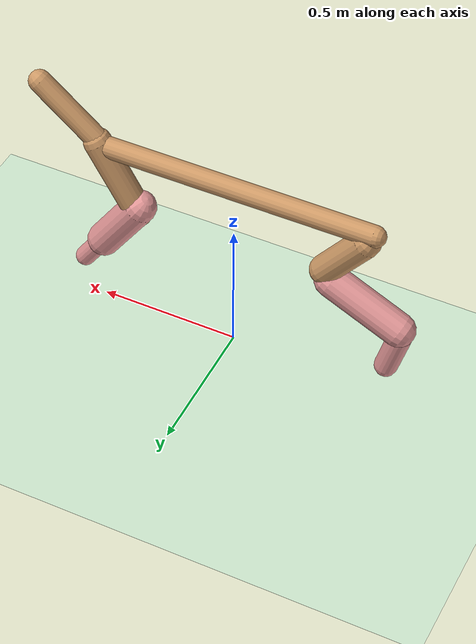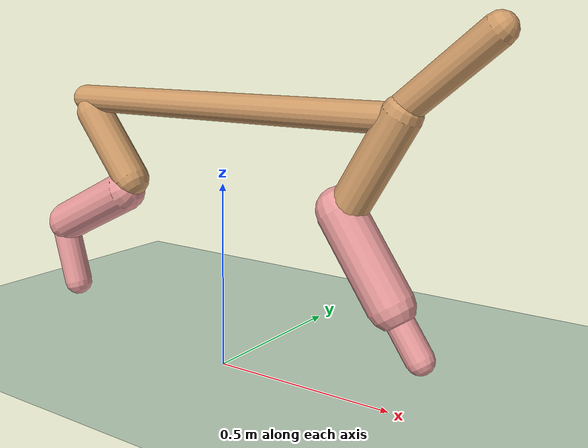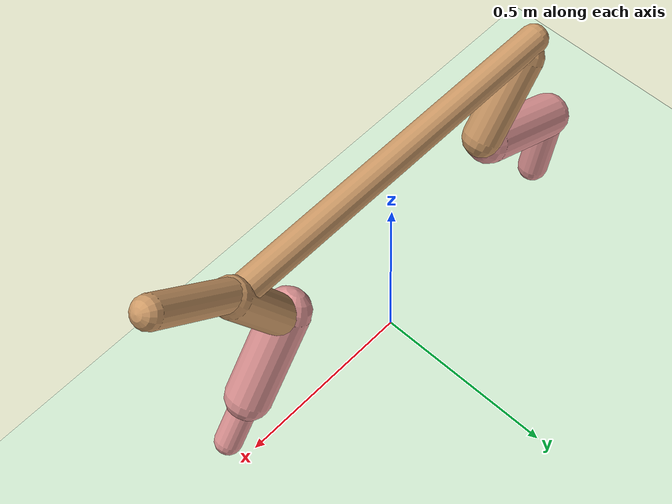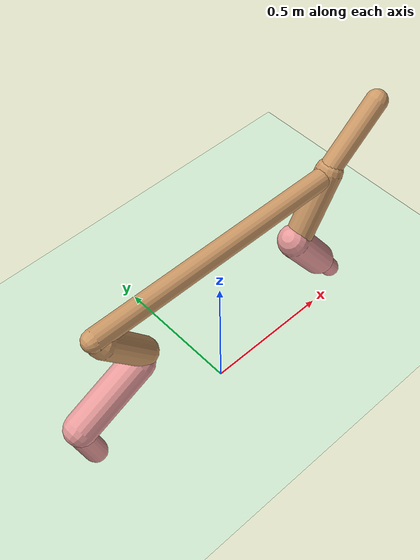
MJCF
<?xml version="1.0" encoding="utf-8"?>
<mujoco model="cheetah">
	<compiler angle="radian" coordinate="local" inertiafromgeom="true" settotalmass="14"></compiler>
	<default>
		<joint armature=".1" damping="0.011441536121211878" limited="true" solimplimit="0 .8 .03" solreflimit=".02 1" stiffness="6.93709244367715"></joint>
		<geom conaffinity="0" condim="3" contype="1" friction="0.46080040900465663 0.08325255886392405 0.08004066173115099" rgba="0.8 0.6 .4 1" solimp="0.0 0.8 0.01" solref="0.02 1"></geom>
		<motor ctrllimited="true" ctrlrange="-1 1"></motor>
	</default>
	<size nstack="300000" nuser_geom="1"></size>
	<option gravity="0 0 -9.81" timestep="0.01"></option>
	<asset>
		<texture builtin="gradient" height="100" rgb1="1 1 1" rgb2="0 0 0" type="skybox" width="100"></texture>
		<texture builtin="flat" height="1278" mark="cross" markrgb="1 1 1" name="texgeom" random="0.01" rgb1="0.8 0.6 0.4" rgb2="0.8 0.6 0.4" type="cube" width="127"></texture>
		<texture builtin="checker" height="100" name="texplane" rgb1="0 0 0" rgb2="0.8 0.8 0.8" type="2d" width="100"></texture>
		<material name="MatPlane" reflectance="0.5" shininess="1" specular="1" texrepeat="60 60" texture="texplane"></material>
		<material name="geom" texture="texgeom" texuniform="true"></material>
	</asset>
	<worldbody>
		<light cutoff="100" diffuse="1 1 1" dir="-0 0 -1.3" directional="true" exponent="1" pos="0 0 1.3" specular=".1 .1 .1"></light>
		<geom conaffinity="1" condim="3" material="MatPlane" name="floor" pos="0 0 0" rgba="0.8 0.9 0.8 1" size="38.310828450698594 48.646450147743785 46.50390545911875" type="plane"></geom>
		<body name="torso" pos="0 0 .7">
			<camera name="track" mode="trackcom" pos="0 -3 0.3" xyaxes="1 0 0 0 0 1"></camera>
			<joint armature="0" axis="1 0 0" damping="0.0" limited="false" name="rootx" pos="0 0 0" stiffness="0.0" type="slide"></joint>
			<joint armature="0" axis="0 0 1" damping="0.0" limited="false" name="rootz" pos="0 0 0" stiffness="0.0" type="slide"></joint>
			<joint armature="0" axis="0 1 0" damping="0.0" limited="false" name="rooty" pos="0 0 0" stiffness="0.0" type="hinge"></joint>
			<geom fromto="-.5 0 0 .5 0 0" name="torso" size="0.037619391989680014" type="capsule"></geom>
			<geom axisangle="0 1 0 .87" name="head" pos=".6 0 .1" size="0.03942211806950179 0.14578253063014304" type="capsule"></geom>
			<body name="bthigh" pos="-.5 0 0">
				<joint axis="0 1 0" damping="4.637609867818123" name="bthigh" pos="0 0 0" range="-.52 1.05" stiffness="251.0094676700205" type="hinge"></joint>
				<geom axisangle="0 1 0 -3.8" name="bthigh" pos=".1 0 -.13" size="0.050988869747485926 0.11486648966650324" type="capsule"></geom>
				<body name="bshin" pos=".16 0 -.25">
					<joint axis="0 1 0" damping="5.341089986227799" name="bshin" pos="0 0 0" range="-.785 .785" stiffness="214.13687604148524" type="hinge"></joint>
					<geom axisangle="0 1 0 -2.03" name="bshin" pos="-.14 0 -.07" rgba="0.9 0.6 0.6 1" size="0.05820467402659811 0.13805834209453918" type="capsule"></geom>
					<body name="bfoot" pos="-.28 0 -.14">
						<joint axis="0 1 0" damping="3.0965899208214243" name="bfoot" pos="0 0 0" range="-.4 .785" stiffness="149.66534230945751" type="hinge"></joint>
						<geom axisangle="0 1 0 -.27" name="bfoot" pos=".03 0 -.097" rgba="0.9 0.6 0.6 1" size="0.040872178150055775 0.08126783438477872" type="capsule"></geom>
					</body>
				</body>
			</body>
			<body name="fthigh" pos=".5 0 0">
				<joint axis="0 1 0" damping="5.329973100718794" name="fthigh" pos="0 0 0" range="-1 .7" stiffness="162.60953480948814" type="hinge"></joint>
				<geom axisangle="0 1 0 .52" name="fthigh" pos="-.07 0 -.12" size="0.049438903361336155 0.14867557613241328" type="capsule"></geom>
				<body name="fshin" pos="-.14 0 -.24">
					<joint axis="0 1 0" damping="2.8980433475644194" name="fshin" pos="0 0 0" range="-1.2 .87" stiffness="102.09497925252809" type="hinge"></joint>
					<geom axisangle="0 1 0 -.6" name="fshin" pos=".065 0 -.09" rgba="0.9 0.6 0.6 1" size="0.05941205345948367 0.12732341036133485" type="capsule"></geom>
					<body name="ffoot" pos=".13 0 -.18">
						<joint axis="0 1 0" damping="1.556621208451376" name="ffoot" pos="0 0 0" range="-.5 .5" stiffness="74.46465925316681" type="hinge"></joint>
						<geom axisangle="0 1 0 -.6" name="ffoot" pos=".045 0 -.07" rgba="0.9 0.6 0.6 1" size="0.0355410055242842 0.07256086600273337" type="capsule"></geom>
					</body>
				</body>
			</body>
		</body>
	</worldbody>
	<actuator>
		<motor gear="120" joint="bthigh" name="bthigh"></motor>
		<motor gear="90" joint="bshin" name="bshin"></motor>
		<motor gear="60" joint="bfoot" name="bfoot"></motor>
		<motor gear="120" joint="fthigh" name="fthigh"></motor>
		<motor gear="60" joint="fshin" name="fshin"></motor>
		<motor gear="30" joint="ffoot" name="ffoot"></motor>
	</actuator>
</mujoco>
